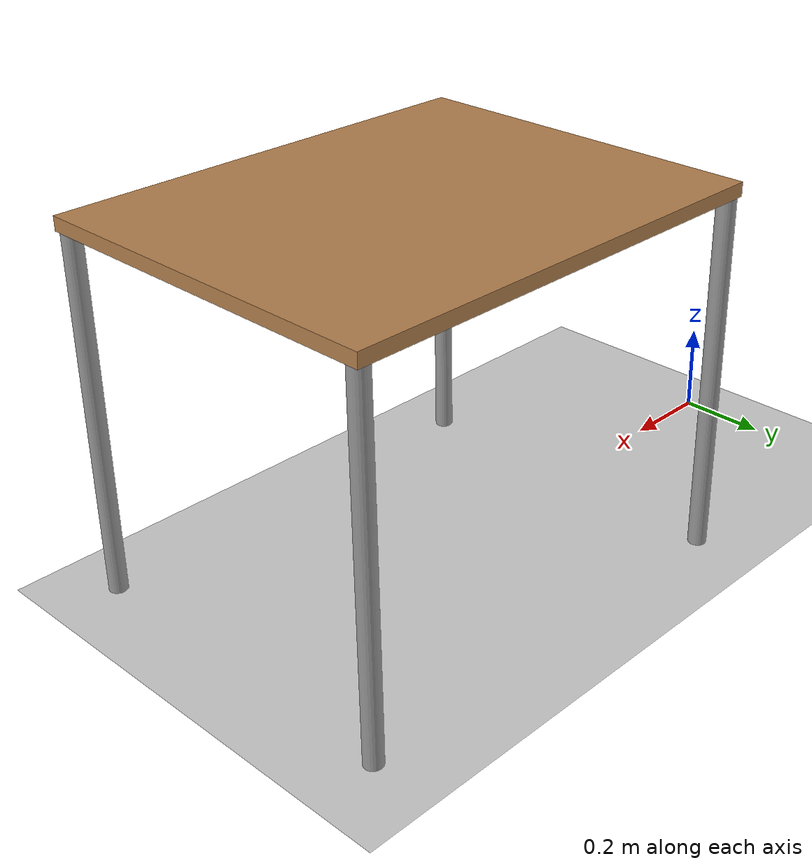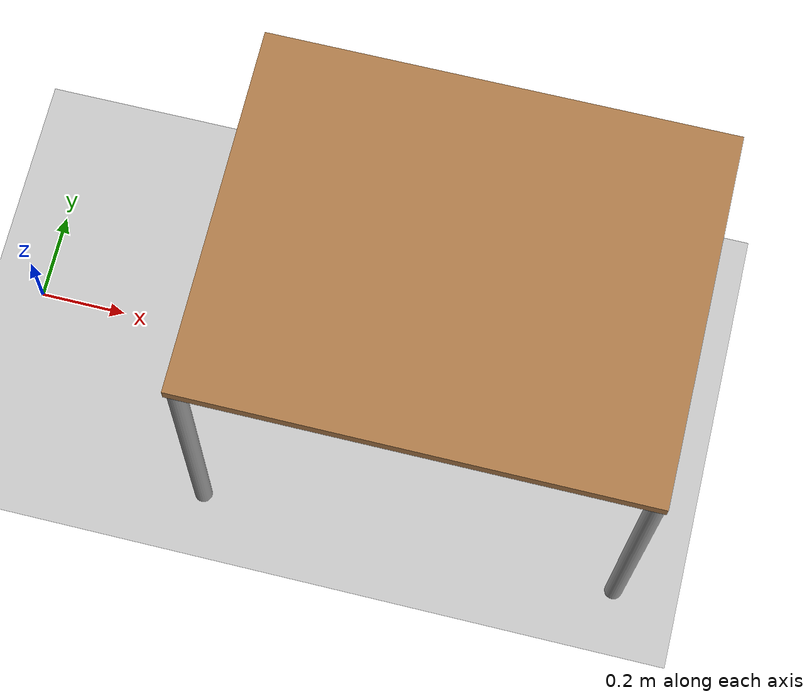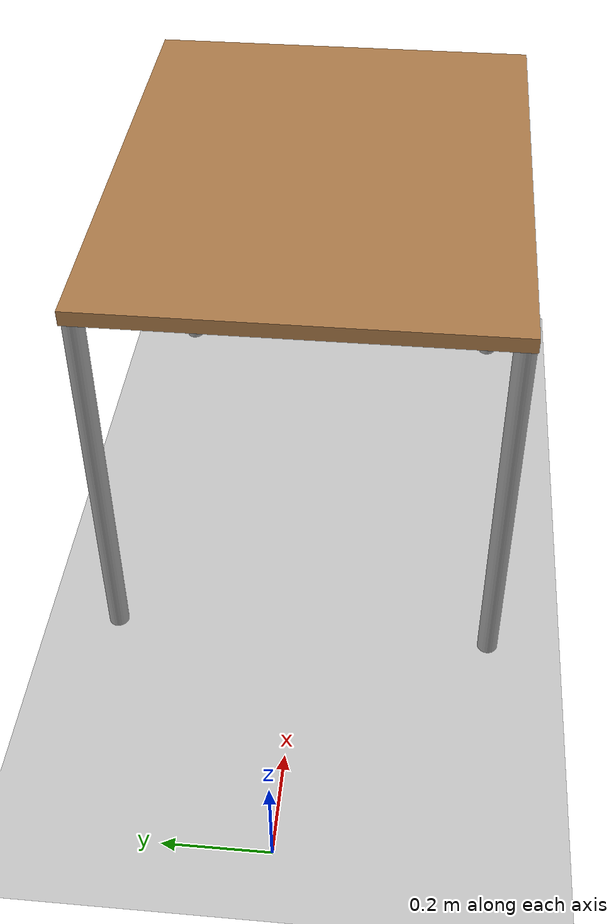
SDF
<sdf version="1.7">
 <world name="default">
  <physics type="ode">
   <ode>
    <solver>
     <type>quick</type>
     <iters>20</iters>
     <sor>1</sor>
     <use_dynamic_moi_rescaling>0</use_dynamic_moi_rescaling>
    </solver>
    <constraints>
     <cfm>0</cfm>
     <erp>0.2</erp>
     <contact_max_correcting_vel>100</contact_max_correcting_vel>
     <contact_surface_layer>0</contact_surface_layer>
    </constraints>
   </ode>
   <real_time_update_rate>1000</real_time_update_rate>
   <max_step_size>0.001</max_step_size>
   <real_time_factor>1</real_time_factor>
  </physics>
  <light name="light1" type="directional">
   <pose>-2 0 4 0 -0 0</pose>
   <diffuse>1 1 1 1</diffuse>
   <specular>0.1 0.1 0.1 1</specular>
   <attenuation>
    <range>20</range>
    <constant>0.9</constant>
    <linear>0.01</linear>
    <quadratic>0.001</quadratic>
   </attenuation>
   <direction>0.2 0 -1</direction>
   <spot><inner_angle>0</inner_angle><outer_angle>0</outer_angle><falloff>0</falloff></spot>
  </light>
  <model name="ground_plane">
   <static>1</static>
   <link name="link">
    <collision name="collision">
     <geometry><plane><normal>0 0 1</normal><size>100 100</size></plane></geometry>
     <surface>
      <contact><collide_bitmask>65535</collide_bitmask></contact>
      <friction><ode><mu>100</mu><mu2>50</mu2></ode></friction>
     </surface>
    </collision>
    <visual name="visual">
     <cast_shadows>0</cast_shadows>
     <geometry><plane><normal>0 0 1</normal><size>100 100</size></plane></geometry>
     <material>
      <script><uri>file://media/materials/scripts/gazebo.material</uri><name>Gazebo/Grey</name></script>
     </material>
    </visual>
   </link>
  </model>
  <model name="table1">
   <static>1</static>
   <link name="link">
    <collision name="surface">
     <pose>0 0 0.8 0 -0 0</pose>
     <geometry><box><size>1 0.8 0.03</size></box></geometry>
    </collision>
    <visual name="visual1">
     <pose>0 0 0.8 0 -0 0</pose>
     <geometry><box><size>1 0.8 0.03</size></box></geometry>
     <material>
      <script><uri>file://media/materials/scripts/gazebo.material</uri><name>Gazebo/Wood</name></script>
     </material>
    </visual>
    <collision name="front_left_leg">
     <pose>0.48 0.38 0.4 0 -0 0</pose>
     <geometry><cylinder><radius>0.02</radius><length>0.8</length></cylinder></geometry>
    </collision>
    <visual name="front_left_leg">
     <pose>0.48 0.38 0.4 0 -0 0</pose>
     <geometry><cylinder><radius>0.02</radius><length>0.8</length></cylinder></geometry>
     <material>
      <script><uri>file://media/materials/scripts/gazebo.material</uri><name>Gazebo/Grey</name></script>
     </material>
    </visual>
    <collision name="front_right_leg">
     <pose>0.48 -0.38 0.4 0 -0 0</pose>
     <geometry><cylinder><radius>0.02</radius><length>0.8</length></cylinder></geometry>
    </collision>
    <visual name="front_right_leg">
     <pose>0.48 -0.38 0.4 0 -0 0</pose>
     <geometry><cylinder><radius>0.02</radius><length>0.8</length></cylinder></geometry>
     <material>
      <script><uri>file://media/materials/scripts/gazebo.material</uri><name>Gazebo/Grey</name></script>
     </material>
    </visual>
    <collision name="back_right_leg">
     <pose>-0.48 -0.38 0.4 0 -0 0</pose>
     <geometry><cylinder><radius>0.02</radius><length>0.8</length></cylinder></geometry>
    </collision>
    <visual name="back_right_leg">
     <pose>-0.48 -0.38 0.4 0 -0 0</pose>
     <geometry><cylinder><radius>0.02</radius><length>0.8</length></cylinder></geometry>
     <material>
      <script><uri>file://media/materials/scripts/gazebo.material</uri><name>Gazebo/Grey</name></script>
     </material>
    </visual>
    <collision name="back_left_leg">
     <pose>-0.48 0.38 0.4 0 -0 0</pose>
     <geometry><cylinder><radius>0.02</radius><length>0.8</length></cylinder></geometry>
    </collision>
    <visual name="back_left_leg">
     <pose>-0.48 0.38 0.4 0 -0 0</pose>
     <geometry><cylinder><radius>0.02</radius><length>0.8</length></cylinder></geometry>
     <material>
      <script><uri>file://media/materials/scripts/gazebo.material</uri><name>Gazebo/Grey</name></script>
     </material>
    </visual>
    <velocity_decay><linear>0</linear><angular>0</angular></velocity_decay>
   </link>
   <pose>0.977663 0 0 0 -0 0</pose>
  </model>
  <gravity>0 0 -9.81</gravity>
  <magnetic_field>6e-06 2.3e-05 -4.2e-05</magnetic_field>
  <atmosphere type="adiabatic"/>
  <scene><ambient>0.4 0.4 0.4 1</ambient><background>0.7 0.7 0.7 1</background><shadows>1</shadows></scene>
  <spherical_coordinates>
   <surface_model>EARTH_WGS84</surface_model>
   <latitude_deg>0</latitude_deg>
   <longitude_deg>0</longitude_deg>
   <elevation>0</elevation>
   <heading_deg>0</heading_deg>
  </spherical_coordinates>
 </world>
</sdf>
